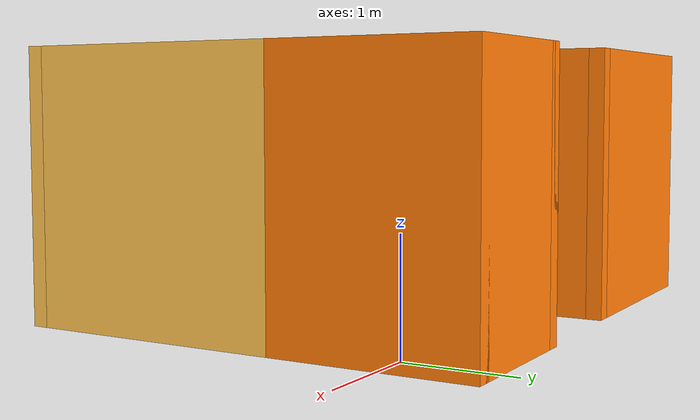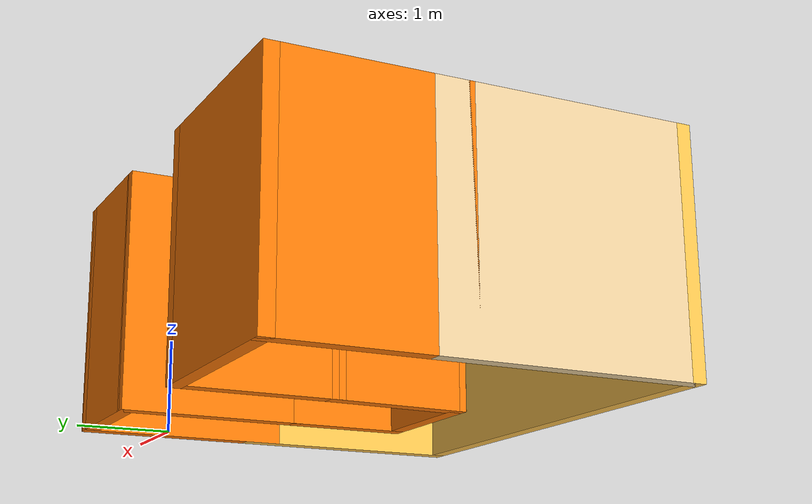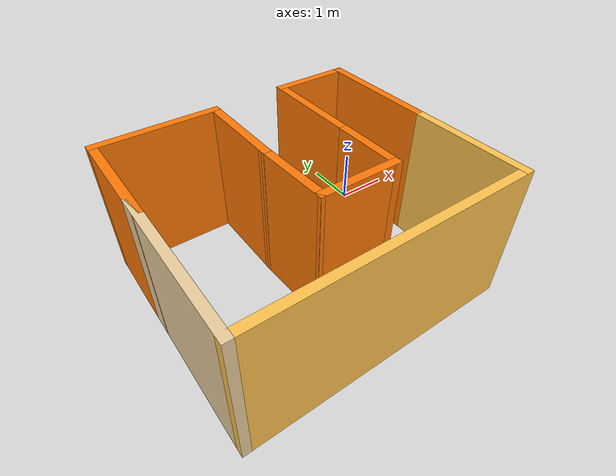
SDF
<?xml version='1.0'?>
<sdf version='1.6'>
  <model name='my_building'>
    <pose frame=''>-2.112 -1.34339 0 0 -0 0</pose>
    <link name='Wall_0'>
      <collision name='Wall_0_Collision'>
        <geometry>
          <box>
            <size>1.5 0.15 2.5</size>
          </box>
        </geometry>
        <pose frame=''>0 0 1.25 0 -0 0</pose>
      </collision>
      <visual name='Wall_0_Visual'>
        <pose frame=''>0 0 1.25 0 -0 0</pose>
        <geometry>
          <box>
            <size>1.5 0.15 2.5</size>
          </box>
        </geometry>
        <material>
          <script>
            <uri>file://media/materials/scripts/gazebo.material</uri>
            <name>Gazebo/Grey</name>
          </script>
          <ambient>0.996078 0.47451 0.0196078 1</ambient>
        </material>
        <meta>
          <layer>0</layer>
        </meta>
      </visual>
      <pose frame=''>0.4 -0.870113 0 0 -0 0</pose>
    </link>
    <link name='Wall_1'>
      <collision name='Wall_1_Collision'>
        <geometry>
          <box>
            <size>0.15 0.15 2.5</size>
          </box>
        </geometry>
        <pose frame=''>0 0 1.25 0 -0 0</pose>
      </collision>
      <visual name='Wall_1_Visual'>
        <pose frame=''>0 0 1.25 0 -0 0</pose>
        <geometry>
          <box>
            <size>0.15 0.15 2.5</size>
          </box>
        </geometry>
        <material>
          <script>
            <uri>file://media/materials/scripts/gazebo.material</uri>
            <name>Gazebo/Grey</name>
          </script>
          <ambient>1 1 1 1</ambient>
        </material>
        <meta>
          <layer>0</layer>
        </meta>
      </visual>
      <pose frame=''>1.075 -0.870113 0 0 -0 0</pose>
    </link>
    <link name='Wall_10'>
      <collision name='Wall_10_Collision'>
        <geometry>
          <box>
            <size>2 0.15 2.5</size>
          </box>
        </geometry>
        <pose frame=''>0 0 1.25 0 -0 0</pose>
      </collision>
      <visual name='Wall_10_Visual'>
        <pose frame=''>0 0 1.25 0 -0 0</pose>
        <geometry>
          <box>
            <size>2 0.15 2.5</size>
          </box>
        </geometry>
        <material>
          <script>
            <uri>file://media/materials/scripts/gazebo.material</uri>
            <name>Gazebo/Grey</name>
          </script>
          <ambient>0.996078 0.47451 0.0196078 1</ambient>
        </material>
        <meta>
          <layer>0</layer>
        </meta>
      </visual>
      <pose frame=''>1.075 1.19511 0 0 -0 1.5708</pose>
    </link>
    <link name='Wall_11'>
      <collision name='Wall_11_Collision'>
        <geometry>
          <box>
            <size>1.5 0.15 2.5</size>
          </box>
        </geometry>
        <pose frame=''>0 0 1.25 0 -0 0</pose>
      </collision>
      <visual name='Wall_11_Visual'>
        <pose frame=''>0 0 1.25 0 -0 0</pose>
        <geometry>
          <box>
            <size>1.5 0.15 2.5</size>
          </box>
        </geometry>
        <material>
          <script>
            <uri>file://media/materials/scripts/gazebo.material</uri>
            <name>Gazebo/Grey</name>
          </script>
          <ambient>0.996078 0.47451 0.0196078 1</ambient>
        </material>
        <meta>
          <layer>0</layer>
        </meta>
      </visual>
      <pose frame=''>1.75 2.12011 0 0 -0 0</pose>
    </link>
    <link name='Wall_12'>
      <collision name='Wall_12_Collision'>
        <geometry>
          <box>
            <size>2.25 0.15 2.5</size>
          </box>
        </geometry>
        <pose frame=''>0 0 1.25 0 -0 0</pose>
      </collision>
      <visual name='Wall_12_Visual'>
        <pose frame=''>0 0 1.25 0 -0 0</pose>
        <geometry>
          <box>
            <size>2.25 0.15 2.5</size>
          </box>
        </geometry>
        <material>
          <script>
            <uri>file://media/materials/scripts/gazebo.material</uri>
            <name>Gazebo/Grey</name>
          </script>
          <ambient>0.996078 0.47451 0.0196078 1</ambient>
        </material>
        <meta>
          <layer>0</layer>
        </meta>
      </visual>
      <pose frame=''>2.425 1.07011 0 0 0 -1.5708</pose>
    </link>
    <link name='Wall_14'>
      <collision name='Wall_14_Collision'>
        <geometry>
          <box>
            <size>1.75 0.15 2.5</size>
          </box>
        </geometry>
        <pose frame=''>0 0 1.25 0 -0 0</pose>
      </collision>
      <visual name='Wall_14_Visual'>
        <pose frame=''>0 0 1.25 0 -0 0</pose>
        <geometry>
          <box>
            <size>1.75 0.15 2.5</size>
          </box>
        </geometry>
        <material>
          <script>
            <uri>file://media/materials/scripts/gazebo.material</uri>
            <name>Gazebo/Grey</name>
          </script>
          <ambient>0.996078 0.47451 0.0196078 1</ambient>
        </material>
        <meta>
          <layer>0</layer>
        </meta>
      </visual>
      <pose frame=''>-0.325 1.27989 0 0 -0 1.5708</pose>
    </link>
    <link name='Wall_15'>
      <collision name='Wall_15_Collision'>
        <geometry>
          <box>
            <size>2.25 0.15 2.5</size>
          </box>
        </geometry>
        <pose frame=''>0 0 1.25 0 -0 0</pose>
      </collision>
      <visual name='Wall_15_Visual'>
        <pose frame=''>0 0 1.25 0 -0 0</pose>
        <geometry>
          <box>
            <size>2.25 0.15 2.5</size>
          </box>
        </geometry>
        <material>
          <script>
            <uri>file://media/materials/scripts/gazebo.material</uri>
            <name>Gazebo/Grey</name>
          </script>
          <ambient>0.996078 0.47451 0.0196078 1</ambient>
        </material>
        <meta>
          <layer>0</layer>
        </meta>
      </visual>
      <pose frame=''>-1.375 2.07989 0 0 -0 3.14159</pose>
    </link>
    <link name='Wall_16'>
      <collision name='Wall_16_Collision'>
        <geometry>
          <box>
            <size>2 0.15 2.5</size>
          </box>
        </geometry>
        <pose frame=''>0 0 1.25 0 -0 0</pose>
      </collision>
      <visual name='Wall_16_Visual'>
        <pose frame=''>0 0 1.25 0 -0 0</pose>
        <geometry>
          <box>
            <size>2 0.15 2.5</size>
          </box>
        </geometry>
        <material>
          <script>
            <uri>file://media/materials/scripts/gazebo.material</uri>
            <name>Gazebo/Grey</name>
          </script>
          <ambient>0.996078 0.47451 0.0196078 1</ambient>
        </material>
        <meta>
          <layer>0</layer>
        </meta>
      </visual>
      <pose frame=''>-2.425 1.15489 0 0 0 -1.5708</pose>
    </link>
    <link name='Wall_2'>
      <collision name='Wall_2_Collision'>
        <geometry>
          <box>
            <size>1.29023 0.15 2.5</size>
          </box>
        </geometry>
        <pose frame=''>0 0 1.25 0 -0 0</pose>
      </collision>
      <visual name='Wall_2_Visual'>
        <pose frame=''>0 0 1.25 0 -0 0</pose>
        <geometry>
          <box>
            <size>1.29023 0.15 2.5</size>
          </box>
        </geometry>
        <material>
          <script>
            <uri>file://media/materials/scripts/gazebo.material</uri>
            <name>Gazebo/Grey</name>
          </script>
          <ambient>0.996078 0.47451 0.0196078 1</ambient>
        </material>
        <meta>
          <layer>0</layer>
        </meta>
      </visual>
      <pose frame=''>1.075 -0.3 0 0 -0 1.5708</pose>
    </link>
    <link name='Wall_4'>
      <collision name='Wall_4_Collision'>
        <geometry>
          <box>
            <size>2.54023 0.15 2.5</size>
          </box>
        </geometry>
        <pose frame=''>0 0 1.25 0 -0 0</pose>
      </collision>
      <visual name='Wall_4_Visual'>
        <pose frame=''>0 0 1.25 0 -0 0</pose>
        <geometry>
          <box>
            <size>2.54023 0.15 2.5</size>
          </box>
        </geometry>
        <material>
          <script>
            <uri>file://media/materials/scripts/gazebo.material</uri>
            <name>Gazebo/Grey</name>
          </script>
          <ambient>1 0.764706 0.305882 1</ambient>
        </material>
        <meta>
          <layer>0</layer>
        </meta>
      </visual>
      <pose frame=''>2.425 -0.925 0 0 0 -1.5708</pose>
    </link>
    <link name='Wall_5'>
      <collision name='Wall_5_Collision'>
        <geometry>
          <box>
            <size>5 0.15 2.5</size>
          </box>
        </geometry>
        <pose frame=''>0 0 1.25 0 -0 0</pose>
      </collision>
      <visual name='Wall_5_Visual'>
        <pose frame=''>0 0 1.25 0 -0 0</pose>
        <geometry>
          <box>
            <size>5 0.15 2.5</size>
          </box>
        </geometry>
        <material>
          <script>
            <uri>file://media/materials/scripts/gazebo.material</uri>
            <name>Gazebo/Grey</name>
          </script>
          <ambient>1 0.764706 0.305882 1</ambient>
        </material>
        <meta>
          <layer>0</layer>
        </meta>
      </visual>
      <pose frame=''>0 -2.12011 0 0 -0 3.14159</pose>
    </link>
    <link name='Wall_6'>
      <collision name='Wall_6_Collision'>
        <geometry>
          <box>
            <size>2.75 0.15 2.5</size>
          </box>
        </geometry>
        <pose frame=''>0 0 1.25 0 -0 0</pose>
      </collision>
      <visual name='Wall_6_Visual'>
        <pose frame=''>0 0 1.25 0 -0 0</pose>
        <geometry>
          <box>
            <size>2.75 0.15 2.5</size>
          </box>
        </geometry>
        <material>
          <script>
            <uri>file://media/materials/scripts/gazebo.material</uri>
            <name>Gazebo/Grey</name>
          </script>
          <ambient>0.921569 0.807843 0.615686 1</ambient>
        </material>
        <meta>
          <layer>0</layer>
        </meta>
      </visual>
      <pose frame=''>-2.425 -0.820114 0 0 -0 1.5708</pose>
    </link>
    <link name='Wall_8'>
      <collision name='Wall_8_Collision'>
        <geometry>
          <box>
            <size>1.50093 0.15 2.5</size>
          </box>
        </geometry>
        <pose frame=''>0 0 1.25 0 -0 0</pose>
      </collision>
      <visual name='Wall_8_Visual'>
        <pose frame=''>0 0 1.25 0 -0 0</pose>
        <geometry>
          <box>
            <size>1.50093 0.15 2.5</size>
          </box>
        </geometry>
        <material>
          <script>
            <uri>file://media/materials/scripts/gazebo.material</uri>
            <name>Gazebo/Grey</name>
          </script>
          <ambient>0.996078 0.47451 0.0196078 1</ambient>
        </material>
        <meta>
          <layer>0</layer>
        </meta>
      </visual>
      <pose frame=''>-0.3 -0.195113 0 0 0 -1.53378</pose>
    </link>
    <static>1</static>
  </model>
</sdf>
